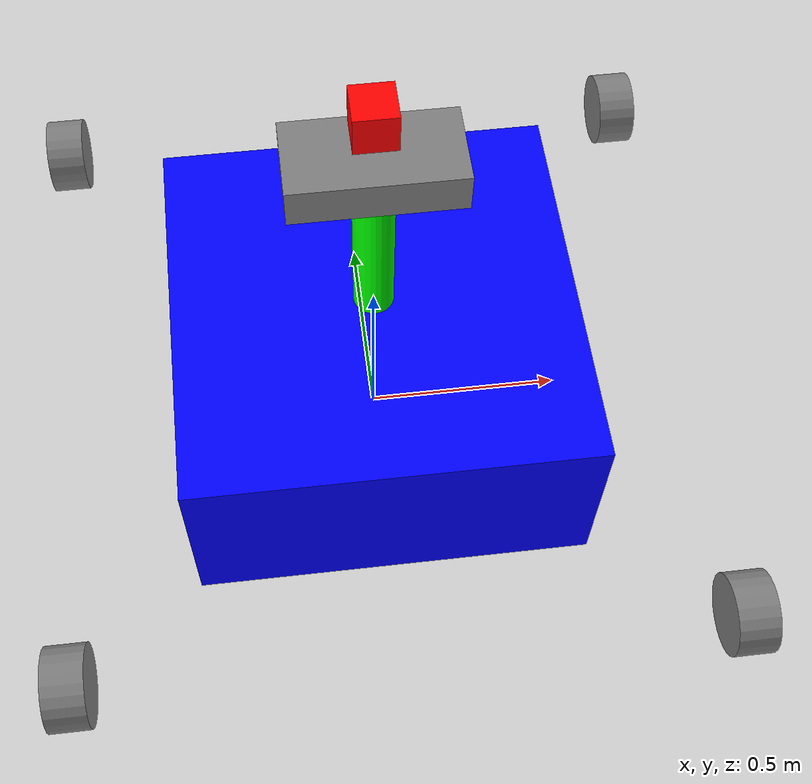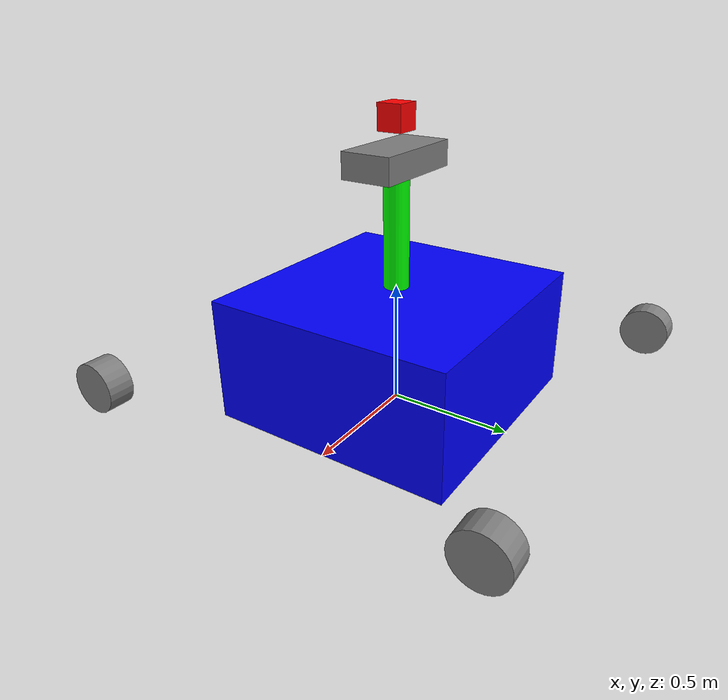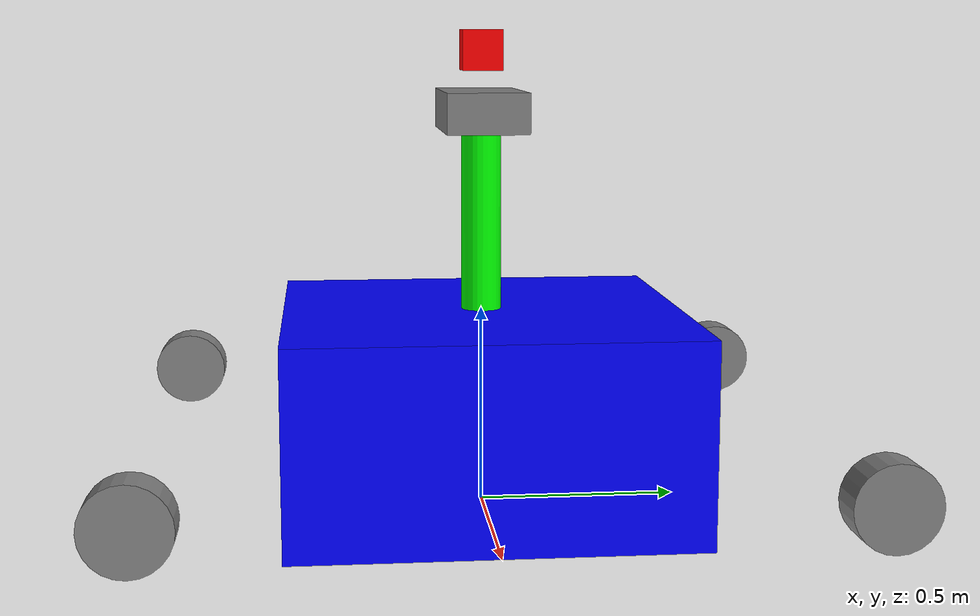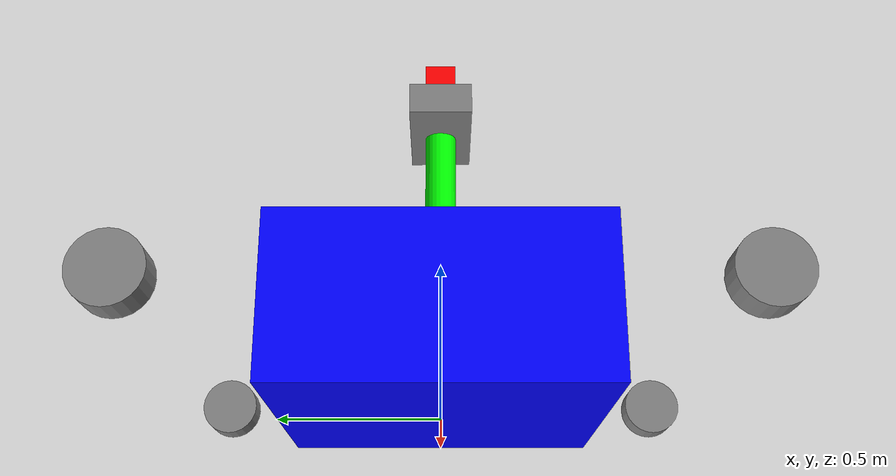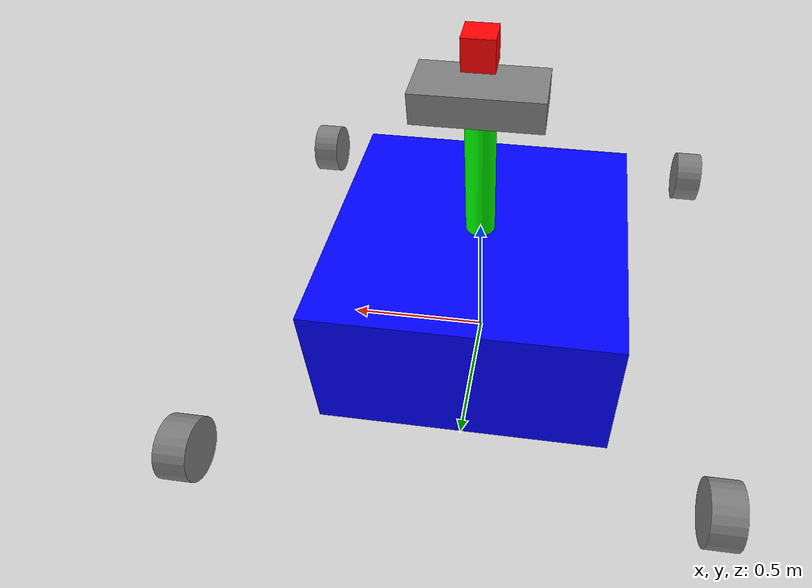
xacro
<?xml version="1.0"?>
<robot name="my_robot" xmlns:xacro="http://www.ros.org/wiki/xacro">

    <xacro:include filename="$(find my_robot_description)/urdf/wheels.xacro"/>
    <xacro:wheels wheel_radius="0.1" wheel_offset_x="0.4" wheel_offset_y="0.4"/>

    <!-- Robot body -->
    <link name="base_link">
        <visual>
            <origin xyz="0 0 0.25" rpy="0 0 0"/>
            <geometry>
                <box size="1 1 0.5"/>
            </geometry>
            <material name="blue">
                <color rgba="0 0 1 1"/>
            </material>
        </visual>
    </link>

    <!-- Slider on top of the body -->
    <link name="slider_link">
        <visual>
            <origin xyz="0 0 0.5" rpy="0 0 0"/>
            <geometry>
                <box size="0.4 0.2 0.1"/>
            </geometry>
            <material name="gray">
                <color rgba="0.5 0.5 0.5 1.0"/>
            </material>
        </visual>
    </link>
    <joint name="slider_joint" type="prismatic">
        <parent link="base_link"/>
        <child link="slider_link"/>
        <origin xyz="0 0 0.5" rpy="0 0 0"/>
        <axis xyz="1 0 0"/>
        <limit lower="0" upper="0.2" effort="10.0" velocity="0.1"/>
    </joint>

    <!-- Arm attached to the slider -->
    <link name="arm_link">
        <visual>
            <origin xyz="0 0 0.1" rpy="0 0 0"/>
            <geometry>
                <cylinder radius="0.05" length="0.6"/>
            </geometry>
            <material name="green">
                <color rgba="0 1 0 1"/>
            </material>
        </visual>
    </link>
    <joint name="arm_joint" type="revolute">
        <parent link="slider_link"/>
        <child link="arm_link"/>
        <origin xyz="0 0 0.05" rpy="0 0 0"/>
        <axis xyz="0 0 1"/>
        <limit lower="-1.57" upper="1.57" effort="10.0" velocity="1.0"/>
    </joint>

    <!-- Camera mounted at the end of the arm -->
    <link name="camera_link">
        <visual>
            <origin xyz="0 0 0.3" rpy="0 0 0"/>
            <geometry>
                <box size="0.1 0.1 0.1"/>
            </geometry>
            <material name="red">
                <color rgba="1 0 0 1"/>
            </material>
        </visual>
    </link>
    <joint name="camera_joint" type="fixed">
        <parent link="arm_link"/>
        <child link="camera_link"/>
        <origin xyz="0 0 0.3" rpy="0 0 0"/>
    </joint>

</robot>

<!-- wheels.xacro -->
<robot xmlns:xacro="http://www.ros.org/wiki/xacro" name="my_robot_wheels">
    <xacro:macro name="wheels" params="wheel_radius wheel_offset_x wheel_offset_y">
        <!-- Front Left Wheel -->
        <link name="wheel_front_left">
            <visual>
                <origin xyz="${wheel_offset_x} ${wheel_offset_y} ${wheel_radius}" rpy="0 1.5708 0"/>
                <geometry>
                    <cylinder radius="${wheel_radius}" length="0.1"/>
                </geometry>
                <material name="gray">
                    <color rgba="0.5 0.5 0.5 1.0"/>
                </material>
            </visual>
        </link>
        <joint name="wheel_joint_front_left" type="continuous">
            <parent link="base_link"/>
            <child link="wheel_front_left"/>
            <origin xyz="${wheel_offset_x} ${wheel_offset_y} ${wheel_radius}" rpy="0 0 0"/>
            <axis xyz="0 1 0"/>
        </joint>

        <!-- Front Right Wheel -->
        <link name="wheel_front_right">
            <visual>
                <origin xyz="${wheel_offset_x} -${wheel_offset_y} ${wheel_radius}" rpy="0 1.5708 0"/>
                <geometry>
                    <cylinder radius="${wheel_radius}" length="0.1"/>
                </geometry>
                <material name="gray">
                    <color rgba="0.5 0.5 0.5 1.0"/>
                </material>
            </visual>
        </link>
        <joint name="wheel_joint_front_right" type="continuous">
            <parent link="base_link"/>
            <child link="wheel_front_right"/>
            <origin xyz="${wheel_offset_x} -${wheel_offset_y} ${wheel_radius}" rpy="0 0 0"/>
            <axis xyz="0 1 0"/>
        </joint>

        <!-- Rear Left Wheel -->
        <link name="wheel_rear_left">
            <visual>
                <origin xyz="-${wheel_offset_x} ${wheel_offset_y} ${wheel_radius}" rpy="0 1.5708 0"/>
                <geometry>
                    <cylinder radius="${wheel_radius}" length="0.1"/>
                </geometry>
                <material name="gray">
                    <color rgba="0.5 0.5 0.5 1.0"/>
                </material>
            </visual>
        </link>
        <joint name="wheel_joint_rear_left" type="continuous">
            <parent link="base_link"/>
            <child link="wheel_rear_left"/>
            <origin xyz="-${wheel_offset_x} ${wheel_offset_y} ${wheel_radius}" rpy="0 0 0"/>
            <axis xyz="0 1 0"/>
        </joint>

        <!-- Rear Right Wheel -->
        <link name="wheel_rear_right">
            <visual>
                <origin xyz="-${wheel_offset_x} -${wheel_offset_y} ${wheel_radius}" rpy="0 1.5708 0"/>
                <geometry>
                    <cylinder radius="${wheel_radius}" length="0.1"/>
                </geometry>
                <material name="gray">
                    <color rgba="0.5 0.5 0.5 1.0"/>
                </material>
            </visual>
        </link>
        <joint name="wheel_joint_rear_right" type="continuous">
            <parent link="base_link"/>
            <child link="wheel_rear_right"/>
            <origin xyz="-${wheel_offset_x} -${wheel_offset_y} ${wheel_radius}" rpy="0 0 0"/>
            <axis xyz="0 1 0"/>
        </joint>
    </xacro:macro>
</robot>
